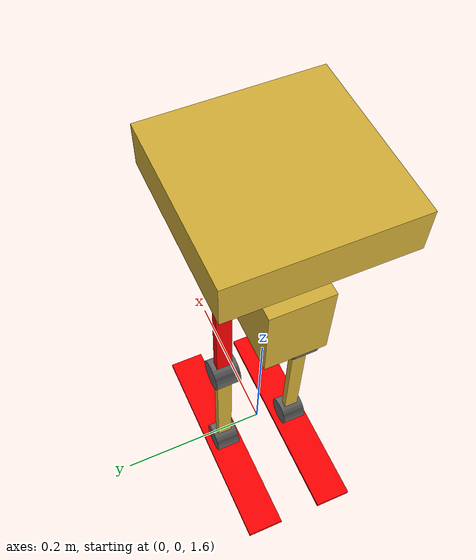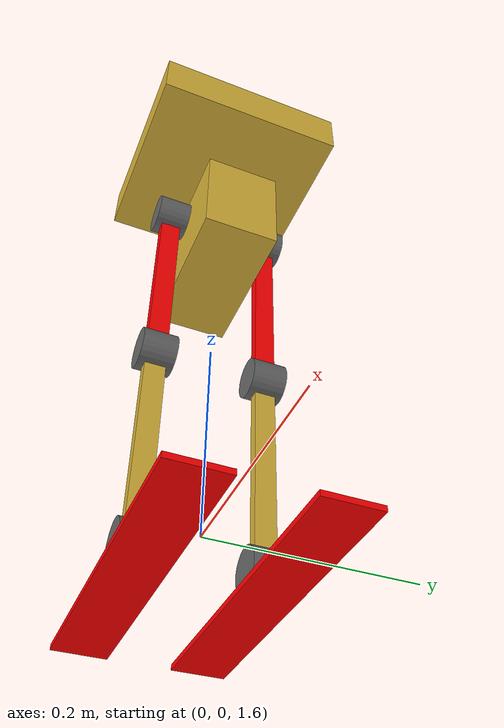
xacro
<?xml version="1.0"?>
<robot name ="biped"
  xmlns:xacro="http://www.ros.org/wiki/xacro">

  <!--
    Properties
  -->
  <xacro:property name = "torso_width" value = "0.075"/>
  <xacro:property name = "torso_height" value = "0.10"/>
  <xacro:property name = "torso_depth" value = "0.15"/>
  <xacro:property name = "torso_mass" value = "0.5"/>

  <xacro:property name = "neck_width" value = "0.01"/>
  <xacro:property name = "neck_length" value = "0.05"/>
  <xacro:property name = "neck_depth" value = "0.02"/>
  <xacro:property name = "neck_mass" value = "0.02"/>

  <xacro:property name = "head_width" value = "0.2"/>
  <xacro:property name = "head_height" value = "0.05"/>
  <xacro:property name = "head_depth" value = "0.2"/>
  <xacro:property name = "head_mass" value = "0.25"/>

  <xacro:property name = "foot_width" value = "0.05"/>
  <xacro:property name = "foot_height" value = "0.005"/>
  <xacro:property name = "foot_length" value = "0.3000"/>
  <xacro:property name = "foot_mass" value = "0.2"/>

  <xacro:property name = "lower_leg_width" value = "0.01"/>
  <xacro:property name = "lower_leg_height" value = "0.02"/>
  <xacro:property name = "lower_leg_length" value = "0.20"/>
  <xacro:property name = "lower_leg_mass" value = "0.10"/>

  <xacro:property name = "upper_leg_width" value = "0.01"/>
  <xacro:property name = "upper_leg_height" value = "0.02"/>
  <xacro:property name = "upper_leg_length" value = "0.20"/>
  <xacro:property name = "upper_leg_mass" value = "0.10"/>

<!--
  Motor based on RMD-L-4015
  http://www.gyems.cn/794904.html
-->
  <xacro:property name = "motor_length" value = "0.033"/>
  <xacro:property name = "motor_radius" value = "0.0198"/>
  <xacro:property name = "motor_mass" value = "0.120"/>
  <xacro:property name = "motor_torque_nm" value = "20.49"/> <!-- stall torque 0.49 , nominal is 0.22 -->

  <xacro:property name = "color_red" value = "1 0 0 1"/>
  <xacro:property name = "color_gold" value = "0.831 0.686 0.216 1"/>
  <xacro:property name = "color_dark_grey" value = "0.4 0.4 0.4 1"/>

  <!--
    Macros
  -->
  <xacro:macro name="box_link" params="name m x y z origin:='0 0 0' rpy:='0 0 0' color">
    <link name = "${name}">
      <inertial>
        <origin xyz="${origin}" rpy="${rpy}"/>
        <mass value="${m}"/>
        <inertia ixx = "${m/12*(y*y+z*z)}" ixy = "0.0" ixz="0.0" iyy="${m/12*(x*x+z*z)}" iyz="0.0" izz="${m/12*(x*x+y*y)}"/>
      </inertial>
      <visual>
        <origin xyz="${origin}" rpy="${rpy}"/>
        <geometry>
          <box size="${x} ${y} ${z}" />
        </geometry>
        <material name="${name}_material">
          <color rgba = "${color}"/>
        </material>
      </visual>
      <collision>
        <origin xyz="${origin}" rpy="${rpy}"/>
        <geometry>
          <box size="${x} ${y} ${z}" />
        </geometry>
      </collision>
    </link>
  </xacro:macro>

  <xacro:macro name="cylinder_link" params="name r l m color origin:='0 0 0' rpy:='0 0 0' ">
    <link name="${name}">
      <inertial>
        <origin xyz="${origin}" rpy="${rpy}" />
        <mass value="${m}"/>
        <inertia ixx="${m*r*r/4+m*l*l}" ixy="0" ixz="0" iyy="${m*r*r/4+m*l*l}" iyz="0" izz="${m*r*r/2}" />
      </inertial>

      <visual>
        <origin xyz="${origin}" rpy="${rpy}" />
        <geometry>
          <cylinder radius="${r}" length="${l}"/>
        </geometry>
        <material name="${name}_color">
          <color rgba="${color}"/>
        </material>
      </visual>

      <collision>
        <origin xyz="${origin}" rpy="${rpy}" />
        <geometry>
          <cylinder radius="${r}" length="${l}"/>
        </geometry>
      </collision>
    </link>
  </xacro:macro>

  <!--
    Links
  -->
  <link name="base_link"></link>
  <xacro:box_link name="torso" x="${torso_depth}" y="${torso_width}" z="${torso_height}" m = "${torso_mass}" origin="0 0 ${-torso_height/2}" rpy="0 0 0.0" color = "${color_gold}"/>
  <xacro:cylinder_link name="neck_motor" m="${motor_mass}" r="${motor_radius}" l="${motor_length}" rpy="${pi/2} 0 0" color="${color_dark_grey}"/>
  <xacro:box_link name="neck" x="${neck_length}" y="${neck_width}" z="${neck_depth}" m = "${neck_mass}" origin="0 0 ${-neck_length/2}" rpy="0 ${-pi/2} 0.0" color = "${color_gold}"/>
  <joint name="torso_neck_motor_offset" type="fixed">
    <parent link = "torso"/>
    <child link="neck_motor"/>
    <origin xyz="0 0 ${motor_radius}" rpy="0 0 ${pi/2}"/>
  </joint>

  <joint name = "head_tilt" type = "revolute">
      <axis xyz="0 1 0"/>
      <limit effort="${motor_torque_nm*3}" lower="${-pi/2}" upper="${pi/2}" velocity="${2*pi/8}"/>
      <origin rpy="${pi} 0 0" xyz="0 0 0"/>
      <parent link="neck_motor"/>
      <child link="neck"/>
  </joint>
  <xacro:box_link name="head" x="${head_depth}" y="${head_width}" z="${head_height}" m = "${head_mass}"  origin="0 0 ${-head_height/2}" rpy="0 0 0.0" color = "${color_gold}"/>
  <joint name="neck_to_head_offset" type="fixed">
    <parent link = "neck"/>
    <child link="head"/>
    <origin xyz="0 0 ${-neck_length}" rpy="0 0 ${pi/2}"/>
  </joint>

  <xacro:macro name="leg_assembly" params="leg_name origin">

    <xacro:cylinder_link name="${leg_name}_hip_motor" m="${motor_mass}" r="${motor_radius}" l="${motor_length}" rpy="${pi/2} 0 0" color="${color_dark_grey}"/>
    <xacro:box_link name="upper_${leg_name}_leg" x="${upper_leg_length}" y="${upper_leg_height}" z="${upper_leg_width}" m = "${upper_leg_mass}" origin="0 0 ${-upper_leg_length/2}" rpy="0 ${-pi/2} 0.0" color = "${color_red}"/>
    <xacro:cylinder_link name="${leg_name}_knee_motor" m="${motor_mass}" r="${motor_radius}" l="${motor_length}" rpy="${pi/2} 0 0" color="${color_dark_grey}"/>
    <xacro:box_link name="lower_${leg_name}_leg" x="${lower_leg_length}" y="${lower_leg_height}" z="${lower_leg_width}" m = "${lower_leg_mass}" origin="0 0 ${-lower_leg_length/2}" rpy="0 ${-pi/2} 0.0" color = "${color_gold}"/>
    <xacro:cylinder_link name="${leg_name}_ankle_motor" m="${motor_mass}" r="${motor_radius}" l="${motor_length}" rpy="${pi/2} 0 0" color="${color_dark_grey}"/>
    <xacro:box_link name="${leg_name}_foot" x="${foot_length}" y="${foot_width}" z="${foot_height}" m = "${foot_mass}" origin="0 0 ${-motor_radius -foot_height/2}" rpy="0 0.0 0.0" color = "${color_red}"/>
    <joint name="torso_to_${leg_name}_hip_motor_joint" type="fixed">
      <parent link="torso"/>
      <origin xyz="${origin}" rpy="0 0 0"/>
      <child link="${leg_name}_hip_motor"/>
    </joint>

    <joint name = "${leg_name}_hip" type = "revolute">
      <axis xyz="0 1 0"/>
      <limit effort="${motor_torque_nm}" lower="${-2*pi}" upper="${2*pi}" velocity="0.5"/>
      <origin rpy="0 0 0" xyz="0 0 0"/>
      <parent link="${leg_name}_hip_motor"/>
      <child link="upper_${leg_name}_leg"/>
    </joint>

    <joint name="upper_${leg_name}_leg_to_knee_motor_joint" type="fixed">
      <parent link="upper_${leg_name}_leg"/>
      <origin xyz="0 0 ${-upper_leg_length}" rpy="0 0 0"/>
      <child link="${leg_name}_knee_motor"/>
    </joint>

    <joint name = "${leg_name}_knee" type = "revolute">
      <axis xyz="0 1 0"/>
      <limit effort="${motor_torque_nm}" lower="${-2*pi}" upper="${2*pi}" velocity="0.5"/>
      <origin rpy="0 0 0" xyz="0 0 0"/>
      <parent link="${leg_name}_knee_motor"/>
      <child link="lower_${leg_name}_leg"/>
    </joint>

    <joint name = "lower_${leg_name}_leg_to_ankle_motor" type="fixed">
      <parent link = "lower_${leg_name}_leg"/>
      <child link = "${leg_name}_ankle_motor"/>
      <origin xyz="0 0 ${-lower_leg_length} "/>
    </joint>

    <joint name = "${leg_name}_ankle" type = "revolute">
      <axis xyz="0 1 0"/>
      <limit effort="${motor_torque_nm*3}" lower="${-2*pi}" upper="${2*pi}" velocity="0.5"/>
      <origin rpy="0 0 0" xyz="0 0 0"/>
      <parent link="${leg_name}_ankle_motor"/>
      <child link="${leg_name}_foot"/>
    </joint>

  <gazebo reference="head">
    <material>Gazebo/Gold</material>
  </gazebo>
  <gazebo reference="neck">
    <material>Gazebo/Gold</material>
  </gazebo>
  <gazebo reference="neck_motor">
    <material>Gazebo/DarkGray</material>
  </gazebo>

  <gazebo reference="${leg_name}_foot">
    <material>Gazebo/Red</material>
  </gazebo>

    <gazebo reference="lower_${leg_name}_leg">
      <material>Gazebo/Gold</material>
    </gazebo>

    <gazebo reference="upper_${leg_name}_leg">
      <material>Gazebo/Red</material>
    </gazebo>

    <gazebo reference="${leg_name}_knee_motor">
      <material>Gazebo/DarkGray</material>
    </gazebo>

    <gazebo reference="${leg_name}_ankle_motor">
      <material>Gazebo/DarkGray</material>
    </gazebo>

    <gazebo reference="${leg_name}_hip_motor">
      <material>Gazebo/DarkGray</material>
    </gazebo>

  <!--
    Transmissions for robot control
  -->
  <transmission name="${leg_name}_ankle_transmission">
    <type>transmission_interface/SimpleTransmission</type>
    <joint name="${leg_name}_ankle">
      <hardwareInterface>hardware_interface/EffortJointInterface</hardwareInterface>
    </joint>
    <actuator name="${leg_name}_ankle_motor">
      <hardwareInterface>hardware_interface/EffortJointInterface</hardwareInterface>
      <mechanicalReduction>3</mechanicalReduction>
    </actuator>
  </transmission>

  <transmission name="${leg_name}_knee_transmission">
    <type>transmission_interface/SimpleTransmission</type>
    <joint name="${leg_name}_knee">
      <hardwareInterface>hardware_interface/EffortJointInterface</hardwareInterface>
    </joint>
    <actuator name="${leg_name}_knee_motor">
      <hardwareInterface>hardware_interface/EffortJointInterface</hardwareInterface>
      <mechanicalReduction>1</mechanicalReduction>
    </actuator>
  </transmission>

  <transmission name="${leg_name}_hip_transmission">
    <type>transmission_interface/SimpleTransmission</type>
    <joint name="${leg_name}_hip">
      <hardwareInterface>hardware_interface/EffortJointInterface</hardwareInterface>
    </joint>
    <actuator name="${leg_name}_hip_motor">
      <hardwareInterface>hardware_interface/EffortJointInterface</hardwareInterface>
      <mechanicalReduction>1</mechanicalReduction>
    </actuator>
  </transmission>

  </xacro:macro>

  <xacro:leg_assembly leg_name="left" origin="0 ${torso_width/2+motor_length/2} ${-motor_radius}"/>
  <xacro:leg_assembly leg_name="right" origin="0 ${-(torso_width/2+motor_length/2)} ${-motor_radius}"/>

  <!--
    Joints
  -->
  <joint name="base_joint" type="fixed">
    <parent link="base_link"/>
    <child link="torso"/>
    <origin xyz="0 0 2.0"/>
  </joint>

  <!--
    Gazebo colors from
    https://github.com/osrf/gazebo/blob/master/media/materials/scripts/gazebo.material
  -->
  <gazebo reference="torso">
    <material>Gazebo/Gold</material>
  </gazebo>

  <!--
    Gazebo ros control
  -->
  <gazebo>
    <plugin name="gazebo_ros_control" filename="libgazebo_ros_control.so">
      <robotNamespace>/biped</robotNamespace>
    </plugin>
  </gazebo>

  <transmission name="$head_tilt_transmission">
    <type>transmission_interface/SimpleTransmission</type>
    <joint name="head_tilt">
      <hardwareInterface>hardware_interface/EffortJointInterface</hardwareInterface>
    </joint>
    <actuator name="neck_motor">
      <hardwareInterface>hardware_interface/EffortJointInterface</hardwareInterface>
      <mechanicalReduction>1</mechanicalReduction>
    </actuator>
  </transmission>

</robot>
